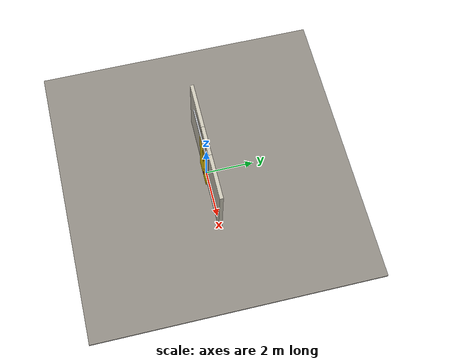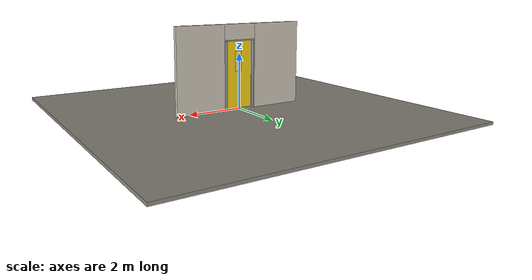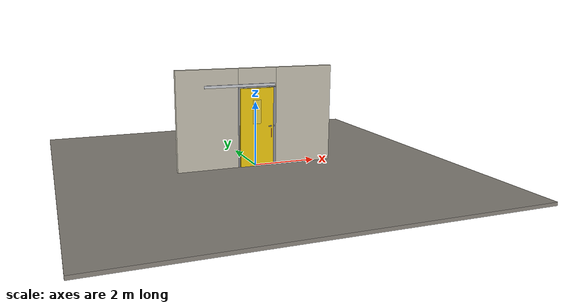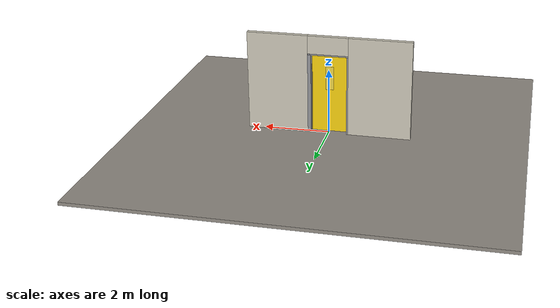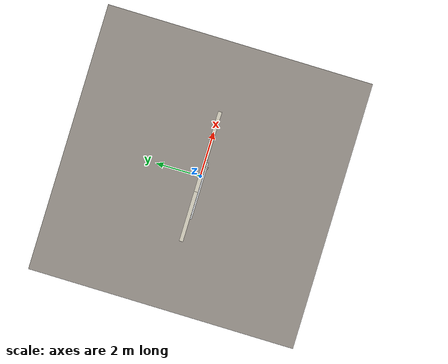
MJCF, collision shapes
<?xml version="1.0" ?>
<mujoco model="db0193_sliding_single_full">
  <compiler angle="radian" meshdir="../../hardware" texturedir="../../textures" autolimits="true" inertiafromgeom="false"/>
  <option timestep="0.002" integrator="implicitfast" cone="elliptic" impratio="10" noslip_iterations="3">
    <flag multiccd="enable"/>
  </option>
  <size memory="16M"/>
  <default>
    <geom condim="4" solref="0.005 1" solimp="0.95 0.99 0.001"/>
    <joint solreflimit="0.005 1" solimplimit="0.95 0.99 0.001"/>
    <tendon solreflimit="0.005 1"/>
    <equality solref="0.002 1"/>
  </default>
  <visual>
    <headlight ambient="0.4 0.4 0.4" diffuse="0.7 0.7 0.7" specular="0.2 0.2 0.2"/>
    <quality shadowsize="4096"/>
    <map znear="0.01" zfar="60"/>
  </visual>
  <asset>
    <mesh name="pull_f8d79d6331" file="pull_f8d79d6331.obj"/>
    <material name="mat_floor" rgba="0.55 0.53 0.5 1" specular="0.2" shininess="0.15" reflectance="0"/>
    <material name="mat_wall" rgba="0.78 0.76 0.7 1" specular="0.2" shininess="0.1" reflectance="0"/>
    <material name="mat_frame" rgba="0.55 0.56 0.58 1" specular="0.8" shininess="0.55" reflectance="0.4"/>
    <material name="mat_track" rgba="0.8 0.81 0.83 1" specular="0.8" shininess="0.6" reflectance="0.4"/>
    <material name="mat_leaf" rgba="0.95 0.8 0.05 1" specular="0.23" shininess="0.6" reflectance="0.02"/>
    <material name="mat_glass" rgba="0.85 0.92 0.95 0.25" specular="0.2" shininess="0.95" reflectance="0.1"/>
    <material name="mat_roller" rgba="0.65 0.66 0.68 1" specular="0.74" shininess="0.5" reflectance="0.36"/>
    <material name="mat_op_stainless" rgba="0.75 0.76 0.77 1" specular="0.8" shininess="0.65" reflectance="0.4"/>
    <material name="mat_op_steel_galvanized" rgba="0.65 0.66 0.68 1" specular="0.74" shininess="0.5" reflectance="0.36"/>
    <material name="mat_padlock" rgba="0.85 0.66 0.3 1" specular="0.8" shininess="0.75" reflectance="0.4"/>
    <material name="mat_hook" rgba="0.75 0.76 0.77 1" specular="0.8" shininess="0.65" reflectance="0.4"/>
    <texture name="skybox" type="skybox" builtin="gradient" rgb1="0.6 0.7 0.85" rgb2="0.9 0.92 0.95" width="256" height="256"/>
  </asset>
  <worldbody>
    <light name="sun" pos="1.5 -2.5 4" dir="-0.3 0.5 -0.8" directional="true" diffuse="0.8 0.8 0.8" specular="0.3 0.3 0.3" castshadow="true"/>
    <light name="fill" pos="-1.5 2.5 3" dir="0.3 -0.5 -0.7" directional="true" diffuse="0.35 0.35 0.4" castshadow="false"/>
    <camera name="robot_view" pos="0 -2.929375 2.049225" xyaxes="1 0 0 0 0.26963 0.962964" fovy="52"/>
    <camera name="far_view" pos="0 2.929375 2.049225" xyaxes="-1 0 0 0 -0.26963 0.962964" fovy="52"/>
    <camera name="iso" pos="2.226325 -2.460675 2.517925" xyaxes="0.741536 0.670913 0 -0.242917 0.268487 0.932151" fovy="46"/>
    <camera name="detail_handle" pos="0.6235 -1.0115 1.33" xyaxes="0.97561 0.219512 0 -0.070934 0.315262 0.94635" fovy="38"/>
    <geom name="floor" type="box" size="6 6 0.05" pos="0 0 -0.05" material="mat_floor" group="0" contype="1" conaffinity="1" friction="0.8 0.005 0.0001" density="2400"/>
    <geom name="wall_left" type="box" size="0.95575 0.0725 1.529" pos="-1.54425 0 1.529" material="mat_wall" group="0" contype="1" conaffinity="1" friction="0.6 0.005 0.0001" density="800"/>
    <geom name="wall_right" type="box" size="0.92575 0.0725 1.529" pos="1.57425 0 1.529" material="mat_wall" group="0" contype="1" conaffinity="1" friction="0.6 0.005 0.0001" density="800"/>
    <geom name="wall_header" type="box" size="0.6185 0.0725 0.2775" pos="0.03 0 2.7805" material="mat_wall" group="0" contype="1" conaffinity="1" friction="0.6 0.005 0.0001" density="800"/>
    <geom name="jamb_l" type="box" size="0.0225 0.0725 1.229" pos="-0.566 0 1.229" material="mat_frame" group="0" contype="1" conaffinity="1" friction="0.6 0.005 0.0001" density="300"/>
    <geom name="jamb_head" type="box" size="0.5885 0.0725 0.0225" pos="0 0 2.4805" material="mat_frame" group="0" contype="1" conaffinity="1" friction="0.6 0.005 0.0001" density="300"/>
    <geom name="track_header" type="box" size="1.117 0.025 0.04" pos="-0.5335 -0.1145 2.543" material="mat_track" group="0" contype="1" conaffinity="1" friction="0.6 0.005 0.0001" density="2700"/>
    <geom name="leaf_staple_leg_n" type="box" size="0.003 0.0025 0.046" pos="0.5735 -0.1185 1.2375" quat="0.707107 0.707107 0 0" material="mat_op_steel_galvanized" group="0" contype="1" conaffinity="1" friction="0.6 0.005 0.0001" density="7800"/>
    <geom name="leaf_staple_leg_p" type="box" size="0.003 0.0025 0.046" pos="0.5735 -0.1185 1.2625" quat="0.707107 0.707107 0 0" material="mat_op_steel_galvanized" group="0" contype="1" conaffinity="1" friction="0.6 0.005 0.0001" density="7800"/>
    <geom name="leaf_staple_bridge" type="box" size="0.003 0.015 0.0025" pos="0.5735 -0.162 1.25" quat="0.707107 0.707107 0 0" material="mat_op_steel_galvanized" group="0" contype="1" conaffinity="1" friction="0.6 0.005 0.0001" density="7800"/>
    <geom name="leaf_staple_base" type="box" size="0.016 0.021 0.001" pos="0.5735 -0.0735 1.25" quat="0.707107 0.707107 0 0" material="mat_op_steel_galvanized" group="1" contype="0" conaffinity="0" density="7800"/>
    <geom name="jamb_latch_0" type="box" size="0.0525 0.0725 1.229" pos="0.596 0 1.229" material="mat_frame" group="0" contype="1" conaffinity="1" friction="0.6 0.005 0.0001" density="300"/>
    <geom name="track_header_bracket" type="box" size="0.8936 0.009 0.032" pos="-0.5335 -0.081 2.543" material="mat_hook" group="1" contype="0" conaffinity="0" density="7850"/>
    <site name="approach_point" pos="0 -1.5 0" quat="1 0 0 0" size="0.05" rgba="0.2 0.9 0.2 0.5" group="4"/>
    <site name="goal_point" pos="0 1.5 0" quat="1 0 0 0" size="0.05" rgba="0.2 0.9 0.2 0.5" group="4"/>
    <site name="door_plane_center" pos="0 0 1.229" quat="1 0 0 0" size="0.02" rgba="0.2 0.9 0.2 0.5" group="4"/>
    <body name="leaf" pos="0 -0.1145 0">
      <inertial pos="0.005347 -0.000985 1.238293" mass="107.670411" quat="0.499546 0.501604 0.498212 -0.500631" diaginertia="10.432890045 53.569007022 63.94892513"/>
      <joint name="leaf_slide" type="slide" axis="-1 0 0" limited="true" range="0 1.067" damping="7.38959" frictionloss="73.995354" armature="0.5"/>
      <geom name="leaf_slab" type="box" size="0.5335 0.022 1.219" pos="0 0 1.231" material="mat_leaf" group="0" contype="1" conaffinity="1" friction="0.45 0.005 0.0001" density="1"/>
      <geom name="leaf_glass_0" type="box" size="0.125 0.0228 0.3657" pos="0 0 1.7186" material="mat_glass" group="1" contype="0" conaffinity="0" density="1"/>
      <geom name="leaf_carrier_0" type="box" size="0.02 0.005 0.0545" pos="-0.4135 0 2.4445" material="mat_roller" group="1" contype="0" conaffinity="0" density="7850"/>
      <geom name="leaf_carrier_wheel_0" type="cylinder" size="0.014 0.006" pos="-0.4135 0 2.489" quat="0.707107 -0.707107 0 0" material="mat_roller" group="1" contype="0" conaffinity="0" density="7850"/>
      <geom name="leaf_carrier_1" type="box" size="0.02 0.005 0.0545" pos="0.4135 0 2.4445" material="mat_roller" group="1" contype="0" conaffinity="0" density="7850"/>
      <geom name="leaf_carrier_wheel_1" type="cylinder" size="0.014 0.006" pos="0.4135 0 2.489" quat="0.707107 -0.707107 0 0" material="mat_roller" group="1" contype="0" conaffinity="0" density="7850"/>
      <geom name="leaf_pull_n" type="mesh" mesh="pull_f8d79d6331" pos="0.4435 -0.022 1.05" quat="0.707107 0.707107 0 0" material="mat_op_stainless" group="1" contype="0" conaffinity="0" density="3000"/>
      <geom name="leaf_pull_col_n" type="capsule" size="0.0125 0.13" pos="0.4435 -0.097 1.05" material="mat_op_stainless" group="3" contype="1" conaffinity="1" rgba="0.8 0.3 0.3 0.25" friction="0.7 0.01 0.0001" density="3000"/>
      <geom name="leaf_hasp_plate" type="box" size="0.024 0.0215 0.003" pos="0.4535 -0.025 1.25" quat="0.707107 0.707107 0 0" material="mat_op_steel_galvanized" group="1" contype="0" conaffinity="0" density="7800"/>
      <site name="leaf_pull_grip_n" pos="0.4435 -0.097 1.05" quat="1 0 0 0" size="0.012" rgba="0.2 0.9 0.2 0.5" group="4"/>
      <site name="leaf_edge_mid" pos="0.5335 0 1.231" quat="1 0 0 0" size="0.02" rgba="0.2 0.9 0.2 0.5" group="4"/>
      <body name="leaf_hasp" pos="0.4735 -0.028 1.25">
        <inertial pos="-0.047959 -0.014989 0" mass="0.121392" quat="0.695946 -0.695946 -0.125136 0.125136" diaginertia="0.000013765 0.000190104 0.000203357"/>
        <joint name="leaf_hasp_hinge" type="hinge" axis="0 0 -1" limited="true" range="0 2.9" damping="0.02" frictionloss="0.05" armature="0.005" ref="2.8"/>
        <geom name="leaf_hasp_strap" type="box" size="0.061 0.0175 0.0015" pos="-0.057978 -0.019021 0" quat="0.120185 0.120185 -0.696818 -0.696818" material="mat_op_steel_galvanized" group="0" contype="1" conaffinity="1" friction="0.6 0.005 0.0001" density="7800"/>
        <geom name="leaf_hasp_knuckle" type="cylinder" size="0.0045 0.0215" pos="-0.00134 0.003769 0" quat="0 0.169967 -0.98545 0" material="mat_op_steel_galvanized" group="1" contype="0" conaffinity="0" density="7850"/>
        <site name="leaf_hasp_grip" pos="-0.099457 -0.024747 0" quat="0.169967 0 0 -0.98545" size="0.01" rgba="0.2 0.9 0.2 0.5" group="4"/>
      </body>
    </body>
  </worldbody>
  <sensor>
    <jointpos name="leaf_slide_pos" joint="leaf_slide"/>
    <jointvel name="leaf_slide_vel" joint="leaf_slide"/>
    <jointpos name="leaf_hasp_hinge_pos" joint="leaf_hasp_hinge"/>
    <jointvel name="leaf_hasp_hinge_vel" joint="leaf_hasp_hinge"/>
  </sensor>
</mujoco>
